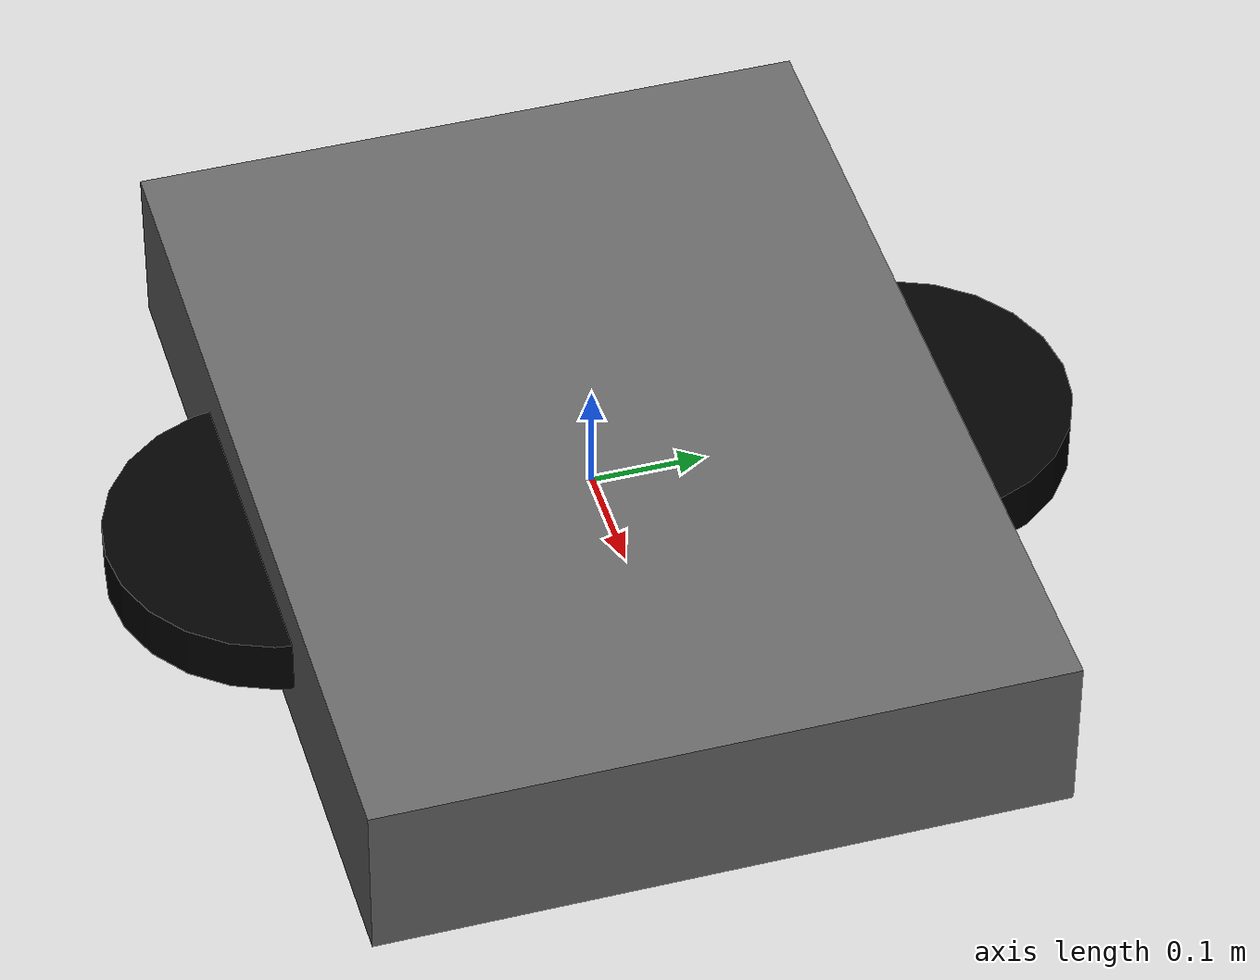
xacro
<?xml version="1.0"?>
<robot xmlns:xacro="http://ros.org/wiki/xacro" name="wheelchair">

  <xacro:property name="wheel_radius" value="0.15"/>
  <xacro:property name="wheel_separation" value="0.55"/>
  <xacro:property name="base_height" value="0.15"/>
  <xacro:property name="base_width" value="0.6"/>
  <xacro:property name="base_length" value="0.8"/>

  <!-- Base link -->
  <link name="base_link">
    <visual>
      <geometry>
        <box size="${base_length} ${base_width} ${base_height}"/>
      </geometry>
      <material name="grey">
        <color rgba="0.4 0.4 0.4 1"/>
      </material>
    </visual>
    <collision>
      <geometry>
        <box size="${base_length} ${base_width} ${base_height}"/>
      </geometry>
    </collision>
    <inertial>
      <mass value="30"/>
      <inertia ixx="1" ixy="0.0" ixz="0.0"
               iyy="1" iyz="0.0"
               izz="1"/>
    </inertial>
  </link>

  <!-- Left wheel -->
  <link name="left_wheel">
    <visual>
      <geometry>
        <cylinder radius="${wheel_radius}" length="0.05"/>
      </geometry>
      <material name="black">
        <color rgba="0 0 0 1"/>
      </material>
    </visual>
    <collision>
      <geometry>
        <cylinder radius="${wheel_radius}" length="0.05"/>
      </geometry>
    </collision>
    <inertial><mass value="2"/></inertial>
  </link>

  <!-- Right wheel -->
  <link name="right_wheel">
    <visual>
      <geometry>
        <cylinder radius="${wheel_radius}" length="0.05"/>
      </geometry>
      <material name="black"/>
    </visual>
    <collision>
      <geometry>
        <cylinder radius="${wheel_radius}" length="0.05"/>
      </geometry>
    </collision>
    <inertial><mass value="2"/></inertial>
  </link>

  <!-- Wheel joints -->
  <joint name="left_wheel_joint" type="continuous">
    <parent link="base_link"/>
    <child link="left_wheel"/>
    <origin xyz="0 ${wheel_separation/2} 0" rpy="0 0 0"/>
    <axis xyz="0 1 0"/>
  </joint>

  <joint name="right_wheel_joint" type="continuous">
    <parent link="base_link"/>
    <child link="right_wheel"/>
    <origin xyz="0 -${wheel_separation/2} 0" rpy="0 0 0"/>
    <axis xyz="0 1 0"/>
  </joint>

  <gazebo>
    <plugin name="diff_drive" filename="libgazebo_ros_diff_drive.so">
      <ros>
        <namespace>/</namespace>
        <remapping>cmd_vel:=/cmd_vel</remapping>
      </ros>
      <robotBaseFrame>base_link</robotBaseFrame>
      <leftJoint>left_wheel_joint</leftJoint>
      <rightJoint>right_wheel_joint</rightJoint>
      <wheelSeparation>${wheel_separation}</wheelSeparation>
      <wheelDiameter>${2 * wheel_radius}</wheelDiameter>
      <torque>20</torque>
      <maxWheelSpeed>10</maxWheelSpeed>
    </plugin>
  </gazebo>

</robot>
